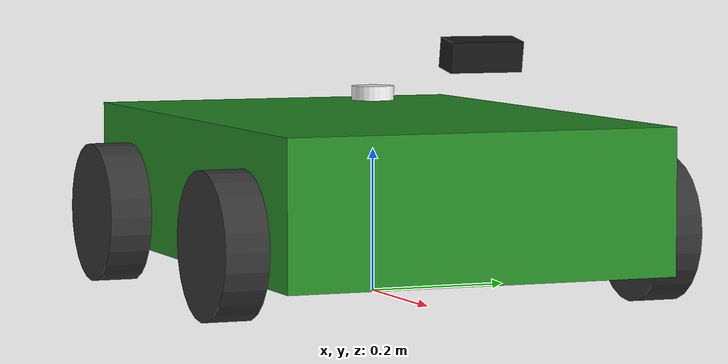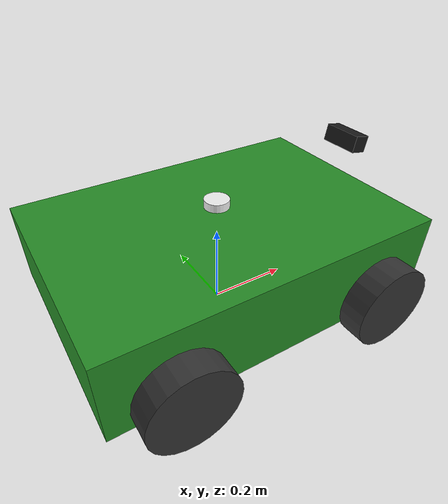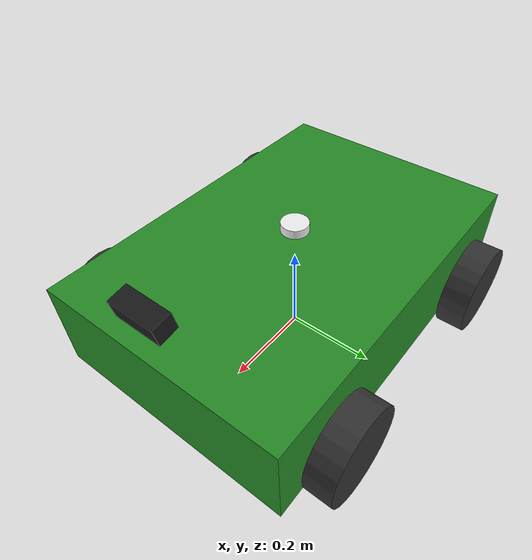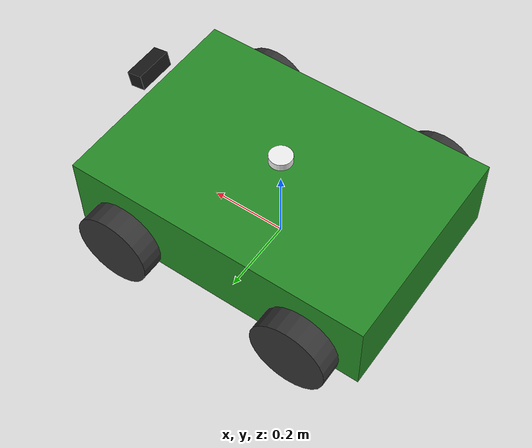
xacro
<?xml version="1.0"?>
<robot xmlns:xacro="http://www.ros.org/wiki/xacro" name="agri_robot">

  <!--                     CONSTANTS                         -->

  <xacro:property name="PI" value="3.14159265359"/>

  <!-- Chassis -->
  <xacro:property name="chassis_l"    value="0.80"/>
  <xacro:property name="chassis_w"    value="0.55"/>
  <xacro:property name="chassis_h"    value="0.20"/>
  <xacro:property name="chassis_mass" value="20.0"/>

  <!-- Wheels -->
  <xacro:property name="wheel_r"    value="0.10"/>
  <xacro:property name="wheel_w"    value="0.06"/>
  <xacro:property name="wheel_mass" value="1.5"/>

  <!-- Ground clearance (chassis bottom to ground) -->
  <xacro:property name="clearance" value="0.05"/>

  <!-- Derived positions -->
  <!-- chassis center height above ground = clearance + half chassis height -->
  <xacro:property name="chassis_z" value="${clearance + chassis_h/2.0}"/>
  <!-- wheel center Z relative to base_link = wheel_r - chassis_z          -->
  <xacro:property name="wheel_dz"  value="${wheel_r - chassis_z}"/>
  <!-- wheel front/rear offset from chassis center -->
  <xacro:property name="wheel_dx"  value="0.25"/>
  <!-- wheel left/right offset: chassis half-width + wheel half-width + 0.005 gap -->
  <xacro:property name="wheel_dy"  value="${chassis_w/2.0 + wheel_w/2.0 + 0.005}"/>

  <!--                  INERTIA MACROS                       -->

  <xacro:macro name="box_inertia" params="m l w h">
    <inertial>
      <mass value="${m}"/>
      <inertia
        ixx="${m*(w*w + h*h)/12.0}" ixy="0.0" ixz="0.0"
        iyy="${m*(l*l + h*h)/12.0}" iyz="0.0"
        izz="${m*(l*l + w*w)/12.0}"/>
    </inertial>
  </xacro:macro>

  <xacro:macro name="cylinder_inertia" params="m r h">
    <inertial>
      <mass value="${m}"/>
      <inertia
        ixx="${m*(3.0*r*r + h*h)/12.0}" ixy="0.0" ixz="0.0"
        iyy="${m*(3.0*r*r + h*h)/12.0}" iyz="0.0"
        izz="${m*r*r/2.0}"/>
    </inertial>
  </xacro:macro>

  <!--                    WHEEL MACRO                        -->

  <xacro:macro name="wheel" params="name dx dy">
    <link name="${name}_link">
      <visual>
        <geometry>
          <cylinder radius="${wheel_r}" length="${wheel_w}"/>
        </geometry>
        <material name="dark_grey">
          <color rgba="0.20 0.20 0.20 1.0"/>
        </material>
      </visual>
      <collision>
        <geometry>
          <cylinder radius="${wheel_r}" length="${wheel_w}"/>
        </geometry>
      </collision>
      <xacro:cylinder_inertia m="${wheel_mass}" r="${wheel_r}" h="${wheel_w}"/>
    </link>

    <joint name="${name}_joint" type="continuous">
      <parent link="base_link"/>
      <child  link="${name}_link"/>
      <!-- rpy="-PI/2 0 0" orients cylinder so its length axis lies along Y (sideways) -->
      <origin xyz="${dx} ${dy} ${wheel_dz}" rpy="${-PI/2} 0 0"/>
      <axis xyz="0 0 1"/>
      <dynamics damping="0.05" friction="0.1"/>
    </joint>
  </xacro:macro>

  <!--                   BASE LINKS                          -->

  <!-- Ground-level reference frame -->
  <link name="base_footprint"/>

  <joint name="base_joint" type="fixed">
    <parent link="base_footprint"/>
    <child  link="base_link"/>
    <origin xyz="0 0 ${chassis_z}" rpy="0 0 0"/>
  </joint>

  <!-- Main chassis body -->
  <link name="base_link">
    <visual>
      <geometry>
        <box size="${chassis_l} ${chassis_w} ${chassis_h}"/>
      </geometry>
      <material name="green">
        <color rgba="0.15 0.55 0.15 1.0"/>
      </material>
    </visual>
    <collision>
      <geometry>
        <box size="${chassis_l} ${chassis_w} ${chassis_h}"/>
      </geometry>
    </collision>
    <xacro:box_inertia m="${chassis_mass}"
                       l="${chassis_l}" w="${chassis_w}" h="${chassis_h}"/>
  </link>

  <!--                      WHEELS                           -->

  <xacro:wheel name="front_left_wheel"  dx=" ${wheel_dx}" dy=" ${wheel_dy}"/>
  <xacro:wheel name="front_right_wheel" dx=" ${wheel_dx}" dy="-${wheel_dy}"/>
  <xacro:wheel name="rear_left_wheel"   dx="-${wheel_dx}" dy=" ${wheel_dy}"/>
  <xacro:wheel name="rear_right_wheel"  dx="-${wheel_dx}" dy="-${wheel_dy}"/>

  <!--                     SENSORS                           -->

  <!-- RGB-D Camera (front-mounted, tilted 10° downward) -->
  <link name="camera_link">
    <visual>
      <geometry><box size="0.04 0.10 0.04"/></geometry>
      <material name="black"><color rgba="0.10 0.10 0.10 1.0"/></material>
    </visual>
    <collision>
      <geometry><box size="0.04 0.10 0.04"/></geometry>
    </collision>
    <inertial>
      <mass value="0.10"/>
      <inertia ixx="0.0001" ixy="0" ixz="0"
               iyy="0.0001" iyz="0" izz="0.0001"/>
    </inertial>
  </link>

  <joint name="camera_joint" type="fixed">
    <parent link="base_link"/>
    <child  link="camera_link"/>
    <!-- Front face of chassis, 10 cm above top, tilted 10° downward -->
    <origin xyz="${chassis_l/2.0 - 0.02} 0 ${chassis_h/2.0 + 0.10}"
            rpy="0 0.175 0"/>
  </joint>

  <!-- Camera optical frame (standard ROS convention: Z forward, X right, Y down) -->
  <link name="camera_optical_link"/>
  <joint name="camera_optical_joint" type="fixed">
    <parent link="camera_link"/>
    <child  link="camera_optical_link"/>
    <origin xyz="0 0 0" rpy="${-PI/2} 0 ${-PI/2}"/>
  </joint>

  <!-- IMU (at chassis center) -->
  <link name="imu_link">
    <inertial>
      <mass value="0.01"/>
      <inertia ixx="1e-5" ixy="0" ixz="0"
               iyy="1e-5" iyz="0" izz="1e-5"/>
    </inertial>
  </link>

  <joint name="imu_joint" type="fixed">
    <parent link="base_link"/>
    <child  link="imu_link"/>
    <origin xyz="0 0 0" rpy="0 0 0"/>
  </joint>

  <!-- GPS antenna (top of chassis) -->
  <link name="gps_link">
    <visual>
      <geometry><cylinder radius="0.03" length="0.02"/></geometry>
      <material name="white"><color rgba="0.95 0.95 0.95 1.0"/></material>
    </visual>
    <inertial>
      <mass value="0.05"/>
      <inertia ixx="1e-5" ixy="0" ixz="0"
               iyy="1e-5" iyz="0" izz="1e-5"/>
    </inertial>
  </link>

  <joint name="gps_joint" type="fixed">
    <parent link="base_link"/>
    <child  link="gps_link"/>
    <origin xyz="0 0 ${chassis_h/2.0 + 0.03}" rpy="0 0 0"/>
  </joint>

  <!--              GAZEBO VISUAL MATERIALS                  -->

  <gazebo reference="base_link">
    <material>Gazebo/Green</material>
  </gazebo>

  <gazebo reference="front_left_wheel_link">
    <material>Gazebo/DarkGrey</material>
    <mu1>1.0</mu1><mu2>1.0</mu2>
    <kp>1000000.0</kp><kd>100.0</kd>
    <minDepth>0.001</minDepth>
  </gazebo>
  <gazebo reference="front_right_wheel_link">
    <material>Gazebo/DarkGrey</material>
    <mu1>1.0</mu1><mu2>1.0</mu2>
    <kp>1000000.0</kp><kd>100.0</kd>
    <minDepth>0.001</minDepth>
  </gazebo>
  <gazebo reference="rear_left_wheel_link">
    <material>Gazebo/DarkGrey</material>
    <mu1>1.0</mu1><mu2>1.0</mu2>
    <kp>1000000.0</kp><kd>100.0</kd>
    <minDepth>0.001</minDepth>
  </gazebo>
  <gazebo reference="rear_right_wheel_link">
    <material>Gazebo/DarkGrey</material>
    <mu1>1.0</mu1><mu2>1.0</mu2>
    <kp>1000000.0</kp><kd>100.0</kd>
    <minDepth>0.001</minDepth>
  </gazebo>

  <gazebo reference="camera_link">
    <material>Gazebo/Black</material>
  </gazebo>

  <!--                  GAZEBO PLUGINS                       -->

  <!-- Front axle (publishes odom + TF) -->
  <gazebo>
    <plugin name="drive_front" filename="libgazebo_ros_diff_drive.so">
      <ros>
        <remapping>cmd_vel:=cmd_vel_mux</remapping>
      </ros>
      <update_rate>30</update_rate>
      <left_joint>front_left_wheel_joint</left_joint>
      <right_joint>front_right_wheel_joint</right_joint>
      <wheel_separation>0.62</wheel_separation>
      <wheel_diameter>0.20</wheel_diameter>
      <max_wheel_torque>20</max_wheel_torque>
      <max_wheel_acceleration>1.0</max_wheel_acceleration>
      <publish_odom>true</publish_odom>
      <publish_odom_tf>true</publish_odom_tf>
      <publish_wheel_tf>false</publish_wheel_tf>
      <odometry_frame>odom</odometry_frame>
      <robot_base_frame>base_footprint</robot_base_frame>
    </plugin>
  </gazebo>

  <!-- Rear axle (same cmd_vel, no duplicate odom) -->
  <gazebo>
    <plugin name="drive_rear" filename="libgazebo_ros_diff_drive.so">
      <ros>
        <remapping>cmd_vel:=cmd_vel_mux</remapping>
      </ros>
      <update_rate>30</update_rate>
      <left_joint>rear_left_wheel_joint</left_joint>
      <right_joint>rear_right_wheel_joint</right_joint>
      <wheel_separation>0.62</wheel_separation>
      <wheel_diameter>0.20</wheel_diameter>
      <max_wheel_torque>20</max_wheel_torque>
      <max_wheel_acceleration>1.0</max_wheel_acceleration>
      <publish_odom>false</publish_odom>
      <publish_odom_tf>false</publish_odom_tf>
      <publish_wheel_tf>false</publish_wheel_tf>
      <odometry_frame>odom</odometry_frame>
      <robot_base_frame>base_footprint</robot_base_frame>
    </plugin>
  </gazebo>

  <gazebo>
    <plugin name="joint_state_publisher"
            filename="libgazebo_ros_joint_state_publisher.so">
      <ros>
        <remapping>~/out:=/joint_states</remapping>
      </ros>
      <update_rate>50</update_rate>
      <joint_name>front_left_wheel_joint</joint_name>
      <joint_name>front_right_wheel_joint</joint_name>
      <joint_name>rear_left_wheel_joint</joint_name>
      <joint_name>rear_right_wheel_joint</joint_name>
    </plugin>
  </gazebo>

  <gazebo reference="imu_link">
    <sensor name="imu_sensor" type="imu">
      <always_on>true</always_on>
      <update_rate>100</update_rate>
      <plugin filename="libgazebo_ros_imu_sensor.so" name="imu_plugin">
        <ros>
          <remapping>~/out:=/imu/data</remapping>
        </ros>
        <initial_orientation_as_reference>false</initial_orientation_as_reference>
      </plugin>
    </sensor>
  </gazebo>

  <gazebo reference="gps_link">
    <sensor name="gps_sensor" type="gps">
      <always_on>true</always_on>
      <update_rate>10</update_rate>
      <gps>
        <position_sensing>
          <horizontal>
            <noise type="gaussian">
              <mean>0.0</mean>
              <stddev>1.5</stddev>
            </noise>
          </horizontal>
          <vertical>
            <noise type="gaussian">
              <mean>0.0</mean>
              <stddev>3.0</stddev>
            </noise>
          </vertical>
        </position_sensing>
      </gps>
      <plugin filename="libgazebo_ros_gps_sensor.so" name="gps_plugin">
        <ros>
          <remapping>~/out:=/gps/fix</remapping>
        </ros>
        <frame_name>gps_link</frame_name>
      </plugin>
    </sensor>
  </gazebo>

  <gazebo reference="camera_link">
    <sensor type="camera" name="rgb_camera">
      <always_on>true</always_on>
      <update_rate>15</update_rate>
      <camera>
        <horizontal_fov>1.0472</horizontal_fov>
        <image>
          <width>640</width>
          <height>480</height>
          <format>R8G8B8</format>
        </image>
        <clip>
          <near>0.05</near>
          <far>20.0</far>
        </clip>
      </camera>
      <plugin name="rgb_camera_controller" filename="libgazebo_ros_camera.so">
        <ros>
          <remapping>image_raw:=/camera/image_raw</remapping>
          <remapping>camera_info:=/camera/camera_info</remapping>
        </ros>
        <camera_name>camera</camera_name>
        <frame_name>camera_optical_link</frame_name>
      </plugin>
    </sensor>
  </gazebo>

  <gazebo reference="camera_link">
    <sensor type="depth" name="depth_camera">
      <always_on>true</always_on>
      <update_rate>10</update_rate>
      <camera>
        <horizontal_fov>1.0472</horizontal_fov>
        <image>
          <width>640</width>
          <height>480</height>
        </image>
        <clip>
          <near>0.05</near>
          <far>10.0</far>
        </clip>
      </camera>
      <plugin name="depth_camera_controller" filename="libgazebo_ros_camera.so">
        <ros>
          <remapping>image_raw:=/camera/depth/image_raw</remapping>
          <remapping>camera_info:=/camera/depth/camera_info</remapping>
        </ros>
        <camera_name>depth_camera</camera_name>
        <frame_name>camera_optical_link</frame_name>
      </plugin>
    </sensor>
  </gazebo>

</robot>
